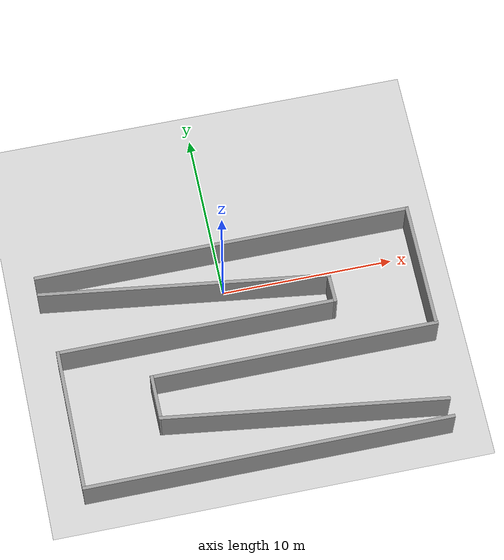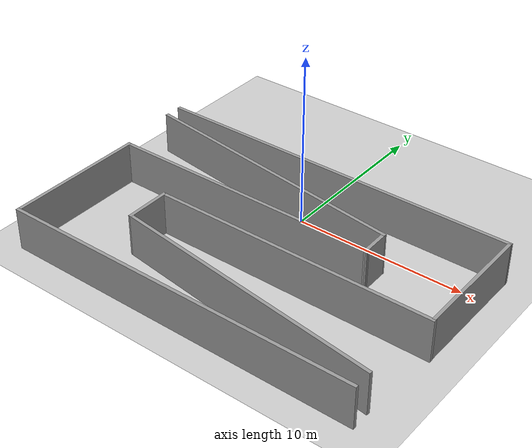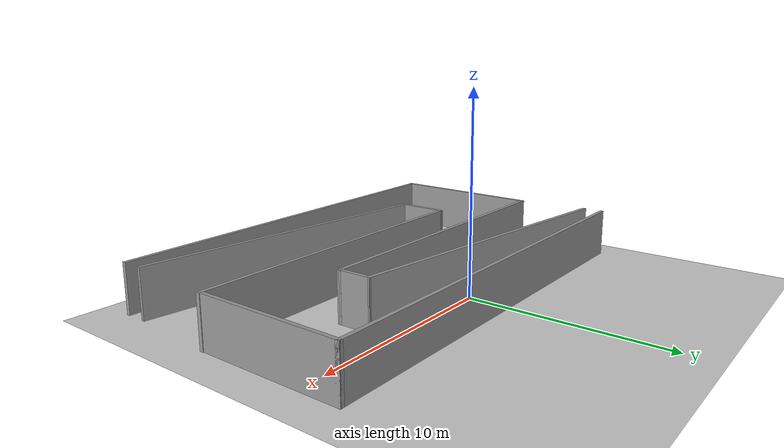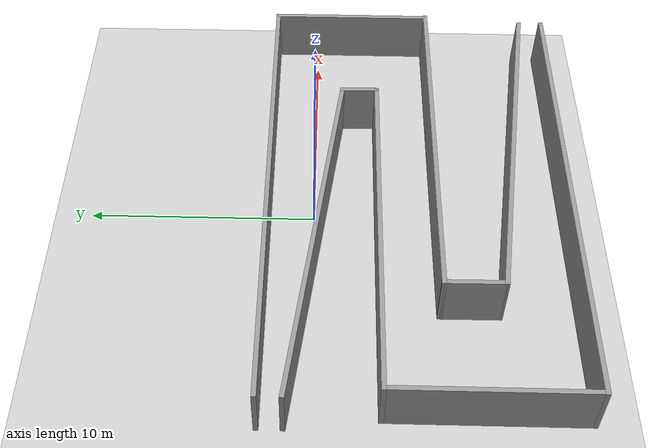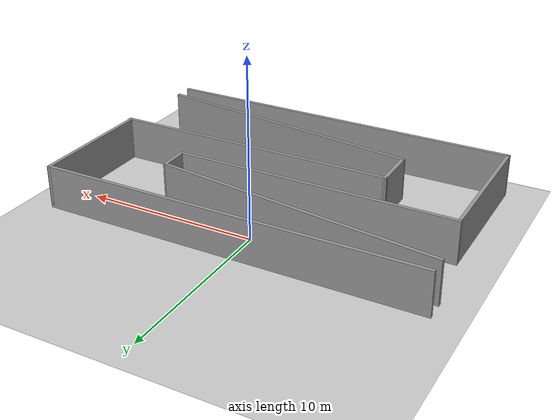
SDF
<sdf version="1.4">
 <world name="default">
  <light name="sun" type="directional">
   <pose>0 0 10 0 -0 0</pose>
   <diffuse>0.8 0.8 0.8 1</diffuse>
   <specular>0.2 0.2 0.2 1</specular>
   <attenuation>
    <range>1000</range>
    <constant>0.9</constant>
    <linear>0.01</linear>
    <quadratic>0.001</quadratic>
   </attenuation>
   <direction>-0.5 0.1 -0.9</direction>
  </light>
  <model name="ground_plane">
   <static>1</static>
   <link name="link">
    <collision name="collision">
     <geometry><plane><normal>0 0 1</normal><size>100 100</size></plane></geometry>
     <surface><friction><ode><mu>100</mu><mu2>50</mu2></ode></friction></surface>
    </collision>
    <visual name="visual">
     <cast_shadows>0</cast_shadows>
     <geometry><plane><normal>0 0 1</normal><size>100 100</size></plane></geometry>
     <material>
      <script><uri>file://media/materials/scripts/gazebo.material</uri><name>Gazebo/Grey</name></script>
     </material>
    </visual>
    <velocity_decay><linear>0</linear><angular>0</angular></velocity_decay>
   </link>
  </model>
  <physics type="ode">
   <max_step_size>0.001</max_step_size>
   <real_time_factor>1</real_time_factor>
   <real_time_update_rate>1000</real_time_update_rate>
   <gravity>0 0 -9.8</gravity>
  </physics>
  <scene><ambient>0.4 0.4 0.4 1</ambient><background>0.7 0.7 0.7 1</background><shadows>1</shadows></scene>
  <spherical_coordinates>
   <surface_model>EARTH_WGS84</surface_model>
   <latitude_deg>0</latitude_deg>
   <longitude_deg>0</longitude_deg>
   <elevation>0</elevation>
   <heading_deg>0</heading_deg>
  </spherical_coordinates>
  <model name="s_1m">
   <link name="Wall_11">
    <collision name="Wall_11_Collision">
     <geometry><box><size>16.8479 0.2 2.5</size></box></geometry>
     <pose>0 0 1.25 0 -0 0</pose>
    </collision>
    <visual name="Wall_11_Visual">
     <pose>0 0 1.25 0 -0 0</pose>
     <geometry><box><size>16.8479 0.2 2.5</size></box></geometry>
     <material>
      <script><uri>file://media/materials/scripts/gazebo.material</uri><name>Gazebo/Grey</name></script>
     </material>
    </visual>
    <velocity_decay><linear>0</linear><angular>0</angular></velocity_decay>
    <pose>-2.30143 -0.10067 0 0 0 -0.1309</pose>
   </link>
   <link name="Wall_12">
    <collision name="Wall_12_Collision">
     <geometry><box><size>1.799 0.2 2.5</size></box></geometry>
     <pose>0 0 1.25 0 -0 0</pose>
    </collision>
    <visual name="Wall_12_Visual">
     <pose>0 0 1.25 0 -0 0</pose>
     <geometry><box><size>1.799 0.2 2.5</size></box></geometry>
     <material>
      <script><uri>file://media/materials/scripts/gazebo.material</uri><name>Gazebo/Grey</name></script>
     </material>
    </visual>
    <velocity_decay><linear>0</linear><angular>0</angular></velocity_decay>
    <pose>5.96453 -1.98656 0 0 0 -1.55428</pose>
   </link>
   <link name="Wall_13">
    <collision name="Wall_13_Collision">
     <geometry><box><size>16.3061 0.2 2.5</size></box></geometry>
     <pose>0 0 1.25 0 -0 0</pose>
    </collision>
    <visual name="Wall_13_Visual">
     <pose>0 0 1.25 0 -0 0</pose>
     <geometry><box><size>16.3061 0.2 2.5</size></box></geometry>
     <material>
      <script><uri>file://media/materials/scripts/gazebo.material</uri><name>Gazebo/Grey</name></script>
     </material>
    </visual>
    <velocity_decay><linear>0</linear><angular>0</angular></velocity_decay>
    <pose>-2.0753 -2.78594 0 0 -0 3.14159</pose>
   </link>
   <link name="Wall_14">
    <collision name="Wall_14_Collision">
     <geometry><box><size>8.45835 0.2 2.5</size></box></geometry>
     <pose>0 0 1.25 0 -0 0</pose>
    </collision>
    <visual name="Wall_14_Visual">
     <pose>0 0 1.25 0 -0 0</pose>
     <geometry><box><size>8.45835 0.2 2.5</size></box></geometry>
     <material>
      <script><uri>file://media/materials/scripts/gazebo.material</uri><name>Gazebo/Grey</name></script>
     </material>
    </visual>
    <velocity_decay><linear>0</linear><angular>0</angular></velocity_decay>
    <pose>-10.1283 -6.91512 0 0 0 -1.5708</pose>
   </link>
   <link name="Wall_15">
    <collision name="Wall_15_Collision">
     <geometry><box><size>21.2793 0.2 2.5</size></box></geometry>
     <pose>0 0 1.25 0 -0 0</pose>
    </collision>
    <visual name="Wall_15_Visual">
     <pose>0 0 1.25 0 -0 0</pose>
     <geometry><box><size>21.2793 0.2 2.5</size></box></geometry>
     <material>
      <script><uri>file://media/materials/scripts/gazebo.material</uri><name>Gazebo/Grey</name></script>
     </material>
    </visual>
    <velocity_decay><linear>0</linear><angular>0</angular></velocity_decay>
    <pose>0.411331 -11.0443 0 0 -0 0</pose>
   </link>
   <link name="Wall_17">
    <collision name="Wall_17_Collision">
     <geometry><box><size>16.4451 0.2 2.5</size></box></geometry>
     <pose>0 0 1.25 0 -0 0</pose>
    </collision>
    <visual name="Wall_17_Visual">
     <pose>0 0 1.25 0 -0 0</pose>
     <geometry><box><size>16.4451 0.2 2.5</size></box></geometry>
     <material>
      <script><uri>file://media/materials/scripts/gazebo.material</uri><name>Gazebo/Grey</name></script>
     </material>
    </visual>
    <velocity_decay><linear>0</linear><angular>0</angular></velocity_decay>
    <pose>2.88272 -8.88906 0 0 -0 3.01069</pose>
   </link>
   <link name="Wall_18">
    <collision name="Wall_18_Collision">
     <geometry><box><size>2.7183 0.2 2.5</size></box></geometry>
     <pose>0 0 1.25 0 -0 0</pose>
    </collision>
    <visual name="Wall_18_Visual">
     <pose>0 0 1.25 0 -0 0</pose>
     <geometry><box><size>2.7183 0.2 2.5</size></box></geometry>
     <material>
      <script><uri>file://media/materials/scripts/gazebo.material</uri><name>Gazebo/Grey</name></script>
     </material>
    </visual>
    <velocity_decay><linear>0</linear><angular>0</angular></velocity_decay>
    <pose>-5.17792 -6.56973 0 0 -0 1.57681</pose>
   </link>
   <link name="Wall_19">
    <collision name="Wall_19_Collision">
     <geometry><box><size>16.7319 0.2 2.5</size></box></geometry>
     <pose>0 0 1.25 0 -0 0</pose>
    </collision>
    <visual name="Wall_19_Visual">
     <pose>0 0 1.25 0 -0 0</pose>
     <geometry><box><size>16.7319 0.2 2.5</size></box></geometry>
     <material>
      <script><uri>file://media/materials/scripts/gazebo.material</uri><name>Gazebo/Grey</name></script>
     </material>
    </visual>
    <velocity_decay><linear>0</linear><angular>0</angular></velocity_decay>
    <pose>3.08047 -5.3106 0 0 -0 0</pose>
   </link>
   <link name="Wall_5">
    <collision name="Wall_5_Collision">
     <geometry><box><size>22.0702 0.2 2.5</size></box></geometry>
     <pose>0 0 1.25 0 -0 0</pose>
    </collision>
    <visual name="Wall_5_Visual">
     <pose>0 0 1.25 0 -0 0</pose>
     <geometry><box><size>22.0702 0.2 2.5</size></box></geometry>
     <material>
      <script><uri>file://media/materials/scripts/gazebo.material</uri><name>Gazebo/Grey</name></script>
     </material>
    </visual>
    <velocity_decay><linear>0</linear><angular>0</angular></velocity_decay>
    <pose>0.380914 2.03523 0 0 -0 0</pose>
   </link>
   <link name="Wall_6">
    <collision name="Wall_6_Collision">
     <geometry><box><size>7.39432 0.2 2.5</size></box></geometry>
     <pose>0 0 1.25 0 -0 0</pose>
    </collision>
    <visual name="Wall_6_Visual">
     <pose>0 0 1.25 0 -0 0</pose>
     <geometry><box><size>7.39432 0.2 2.5</size></box></geometry>
     <material>
      <script><uri>file://media/materials/scripts/gazebo.material</uri><name>Gazebo/Grey</name></script>
     </material>
    </visual>
    <velocity_decay><linear>0</linear><angular>0</angular></velocity_decay>
    <pose>11.316 -1.56193 0 0 0 -1.5708</pose>
   </link>
   <static>1</static>
  </model>
 </world>
</sdf>
